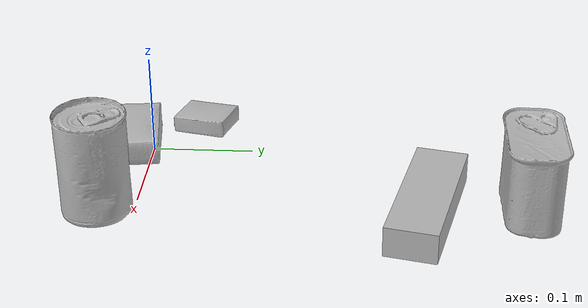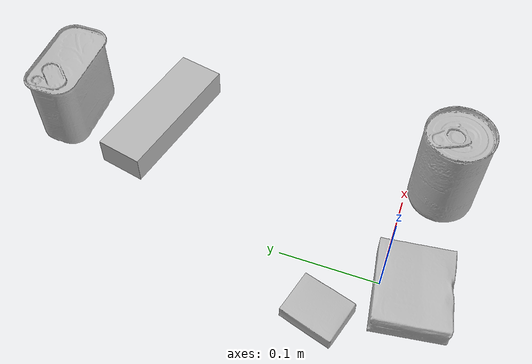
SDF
<sdf version="1.4">
  <world name="default">
    <light name="light1" type="point">
      <pose>0 0 1 0 0 0</pose>
      <diffuse>3 3 3 1</diffuse>
      <specular>3 3 3 1</specular>
    </light>
    <light name="light2" type="point">
      <pose>0 0.5 2 0 0 0</pose>
      <diffuse>1 1 1 1</diffuse>
      <specular>1 1 1 1</specular>
    </light>
    <light name="light3" type="point">
      <pose>0 0.5 2 0 0 0</pose>
      <diffuse>3 3 3 1</diffuse>
      <specular>3 3 3 1</specular>
    </light>
    <scene>
      <ambient>0.7 0.7 0.7</ambient>
    </scene>
    <model name="box1">
      <link name="link_box1">
        <collision name="default">
          <geometry>
            <mesh>
              <uri>model://pudding_box/collision_meshes/collision.obj</uri>
              <scale>0.5 0.5 0.5</scale>
            </mesh>
          </geometry>
          <surface>
            <friction>
              <ode>
                <mu>0.5</mu>
                <mu2>0.5</mu2>
              </ode>
            </friction>
          <contact>
        <ode>
            <max_vel>0</max_vel>
            <min_depth>0.0001</min_depth>
            <kp>1e8</kp>
        </ode>
    </contact></surface>
        </collision>
        <visual name="default">
          <geometry>
            <mesh>
              <uri>model://pudding_box/visual_meshes/visual.dae</uri>
              <scale>0.5 0.5 0.5</scale>
            </mesh>
          </geometry>
        </visual>
        <inertial>
          <mass>0.040720973163843155</mass>
          <pose>0.00024474109522998333 0.0004033942532259971 -0.0002594413817860186 0.005213101818388509 -0.006603799159636292 0.020079815843731863</pose>
          <inertia>
            <ixx>1.1508242e-05</ixx>
            <iyy>7.742825e-06</iyy>
            <izz>1.6994923e-05</izz>
            <ixy>0</ixy>
            <ixz>0</ixz>
            <iyz>0</iyz>
          </inertia>
        </inertial>
      </link>
      <pose>-0.05127228423953056 0.0469207838177681 0.009862899780273438 0.022348714231361096 -0.01139156745052616 -0.27753394618648397</pose>
    </model>
    <model name="box2">
      <link name="link_box2">
        <collision name="default">
          <geometry>
            <mesh>
              <uri>model://jenga/collision_meshes/collision.obj</uri>
              <scale>1.0 1.0 1.0</scale>
            </mesh>
          </geometry>
          <surface>
            <friction>
              <ode>
                <mu>0.5</mu>
                <mu2>0.5</mu2>
              </ode>
            </friction>
          <contact>
        <ode>
            <max_vel>0</max_vel>
            <min_depth>0.0001</min_depth>
            <kp>1e8</kp>
        </ode>
    </contact></surface>
        </collision>
        <visual name="default">
          <geometry>
            <mesh>
              <uri>model://jenga/visual_meshes/visual.dae</uri>
              <scale>1.0 1.0 1.0</scale>
            </mesh>
          </geometry>
        </visual>
        <inertial>
          <mass>0.2260044664144516</mass>
          <pose>-2.502855807051674e-07 -0.00010250010382151231 -4.0923401684267446e-05 0.0 -7.34215461761844e-07 0.0</pose>
          <inertia>
            <ixx>6.254092e-05</ixx>
            <iyy>0.00042377558</iyy>
            <izz>0.00045241645</izz>
            <ixy>0</ixy>
            <ixz>0</ixz>
            <iyz>0</iyz>
          </inertia>
        </inertial>
      </link>
      <pose>0.11430846899747849 0.2741280496120453 0.014999998733401299 5.787118114727081e-09 -4.2077195770419465e-09 -0.22032431243529657</pose>
    </model>
    <model name="box3">
      <link name="link_box3">
        <collision name="default">
          <geometry>
            <mesh>
              <uri>model://gelatin_box/collision_meshes/collision.obj</uri>
              <scale>1.0 1.0 1.0</scale>
            </mesh>
          </geometry>
          <surface>
            <friction>
              <ode>
                <mu>0.5</mu>
                <mu2>0.5</mu2>
              </ode>
            </friction>
          <contact>
        <ode>
            <max_vel>0</max_vel>
            <min_depth>0.0001</min_depth>
            <kp>1e8</kp>
        </ode>
    </contact></surface>
        </collision>
        <visual name="default">
          <geometry>
            <mesh>
              <uri>model://gelatin_box/visual_meshes/visual.dae</uri>
              <scale>1.0 1.0 1.0</scale>
            </mesh>
          </geometry>
        </visual>
        <inertial>
          <mass>0.21249663829803467</mass>
          <pose>0.000431961816502735 0.00011156871914863586 -0.0003640321083366871 -0.0010503720865678746 -0.004755816824885886 0.016440563196489677</pose>
          <inertia>
            <ixx>0.00015000527</ixx>
            <iyy>0.000107147986</iyy>
            <izz>0.00022834145</izz>
            <ixy>0</ixy>
            <ixz>0</ixz>
            <iyz>0</iyz>
          </inertia>
        </inertial>
      </link>
      <pose>-0.004592929966747761 -0.030463898554444313 0.015168308280408382 0.0055965974665132 -0.007303619202024131 -1.4500469014699455</pose>
    </model>
    <model name="can1">
      <link name="link_can1">
        <collision name="default">
          <geometry>
            <mesh>
              <uri>model://tomato_soup_can/collision_meshes/collision.obj</uri>
              <scale>1.0 1.0 1.0</scale>
            </mesh>
          </geometry>
          <surface>
            <friction>
              <ode>
                <mu>0.5</mu>
                <mu2>0.5</mu2>
              </ode>
            </friction>
          <contact>
        <ode>
            <max_vel>0</max_vel>
            <min_depth>0.0001</min_depth>
            <kp>1e8</kp>
        </ode>
    </contact></surface>
        </collision>
        <visual name="default">
          <geometry>
            <mesh>
              <uri>model://tomato_soup_can/visual_meshes/visual.dae</uri>
              <scale>1.0 1.0 1.0</scale>
            </mesh>
          </geometry>
        </visual>
        <inertial>
          <mass>0.23179346323013306</mass>
          <pose>0.00012652273289859295 0.00010805525380419567 -0.0017973976209759712 0.00702006934742656 0.00042299045868732465 -0.009902874376192201</pose>
          <inertia>
            <ixx>0.0002541419</ixx>
            <iyy>0.00025267305</iyy>
            <izz>0.00013171937</izz>
            <ixy>0</ixy>
            <ixz>0</ixz>
            <iyz>0</iyz>
          </inertia>
        </inertial>
      </link>
      <pose>0.12021751701831818 -0.03393345698714256 0.05127402022480965 -4.2623748781592505e-07 -7.078494956875577e-07 -2.870232616181172</pose>
    </model>
    <model name="can2">
      <link name="link_can2">
        <collision name="default">
          <geometry>
            <mesh>
              <uri>model://potted_meat_can/collision_meshes/collision.obj</uri>
              <scale>1.0 1.0 1.0</scale>
            </mesh>
          </geometry>
          <surface>
            <friction>
              <ode>
                <mu>0.5</mu>
                <mu2>0.5</mu2>
              </ode>
            </friction>
          <contact>
        <ode>
            <max_vel>0</max_vel>
            <min_depth>0.0001</min_depth>
            <kp>1e8</kp>
        </ode>
    </contact></surface>
        </collision>
        <visual name="default">
          <geometry>
            <mesh>
              <uri>model://potted_meat_can/visual_meshes/visual.dae</uri>
              <scale>1.0 1.0 1.0</scale>
            </mesh>
          </geometry>
        </visual>
        <inertial>
          <mass>0.3195023536682129</mass>
          <pose>0.00022888148669153452 -5.98910846747458e-05 -0.0006367437308654189 -0.028093352727545092 -0.0072326048209280834 0.015406269022640915</pose>
          <inertia>
            <ixx>0.00041100648</ixx>
            <iyy>0.0002497176</iyy>
            <izz>0.00029892896</izz>
            <ixy>0</ixy>
            <ixz>0</ixz>
            <iyz>0</iyz>
          </inertia>
        </inertial>
      </link>
      <pose>0.09985646605491638 0.3711269497871399 0.04212799668312073 1.1987567902254457e-09 -6.071287496187146e-07 -1.5814228685394929</pose>
    </model>
  <physics type="ode">
      <max_contacts>50</max_contacts>
      <ode>
        <solver>
          <type>quick</type>
          <iters>75</iters>
        </solver>
        <constraints>
          <contact_max_correcting_vel>0</contact_max_correcting_vel>
          <contact_surface_layer>0</contact_surface_layer>
        </constraints>
      </ode>
    </physics></world>
</sdf>
